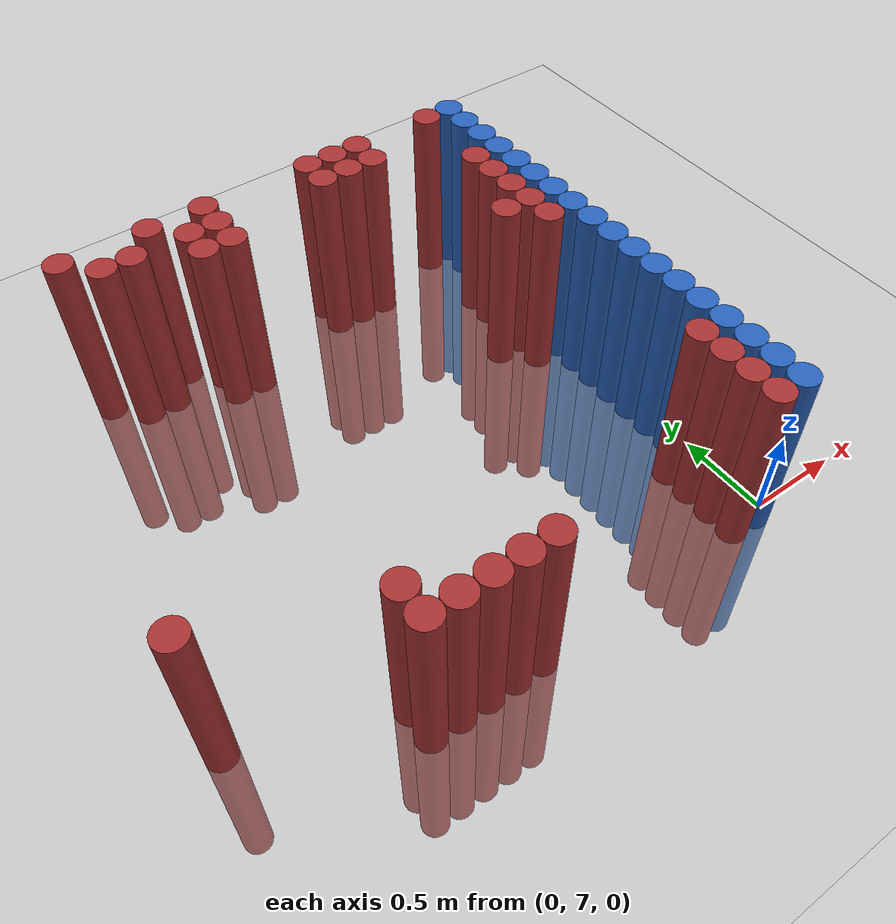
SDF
<sdf version="1.6">
 <world name="default">
  <model name="ground_plane">
   <static>1</static>
   <link name="link">
    <collision name="collision">
     <geometry><plane><normal>0 0 1</normal><size>100 100</size></plane></geometry>
     <surface><friction><ode><mu>100</mu><mu2>50</mu2></ode></friction></surface>
    </collision>
    <visual name="visual">
     <cast_shadows>0</cast_shadows>
     <geometry><plane><normal>0 0 1</normal><size>100 100</size></plane></geometry>
     <material>
      <script><uri>file://media/materials/scripts/gazebo.material</uri><name>Gazebo/Grey</name></script>
     </material>
    </visual>
   </link>
  </model>
  <model name="unit_cylinder_152">
   <static>1</static>
   <pose>-2.775000 7.425000 0.000000 0.000000 0.000000 0.000000</pose>
   <link name="link">
    <inertial>
     <mass>1</mass>
     <inertia><ixx>0.145833</ixx><ixy>0</ixy><ixz>0</ixz><iyy>0.145833</iyy><iyz>0</iyz><izz>0.125</izz></inertia>
    </inertial>
    <collision name="collision">
     <geometry><cylinder><radius>0.075000</radius><length>2</length></cylinder></geometry>
    </collision>
    <visual name="visual">
     <geometry><cylinder><radius>0.075000</radius><length>2</length></cylinder></geometry>
     <material>
      <ambient>0.648000 0.192000 0.192000 1</ambient>
      <diffuse>0.648000 0.192000 0.192000 1</diffuse>
     </material>
     <material>
      <script><name>Gazebo/Grey</name><uri>file://media/materials/scripts/gazebo.material</uri></script>
     </material>
    </visual>
   </link>
  </model>
  <model name="unit_cylinder_154">
   <static>1</static>
   <pose>-2.325000 9.525000 0.000000 0.000000 0.000000 0.000000</pose>
   <link name="link">
    <inertial>
     <mass>1</mass>
     <inertia><ixx>0.145833</ixx><ixy>0</ixy><ixz>0</ixz><iyy>0.145833</iyy><iyz>0</iyz><izz>0.125</izz></inertia>
    </inertial>
    <collision name="collision">
     <geometry><cylinder><radius>0.075000</radius><length>2</length></cylinder></geometry>
    </collision>
    <visual name="visual">
     <geometry><cylinder><radius>0.075000</radius><length>2</length></cylinder></geometry>
     <material>
      <ambient>0.648000 0.192000 0.192000 1</ambient>
      <diffuse>0.648000 0.192000 0.192000 1</diffuse>
     </material>
     <material>
      <script><name>Gazebo/Grey</name><uri>file://media/materials/scripts/gazebo.material</uri></script>
     </material>
    </visual>
   </link>
  </model>
  <model name="unit_cylinder_155">
   <static>1</static>
   <pose>-2.175000 9.375000 0.000000 0.000000 0.000000 0.000000</pose>
   <link name="link">
    <inertial>
     <mass>1</mass>
     <inertia><ixx>0.145833</ixx><ixy>0</ixy><ixz>0</ixz><iyy>0.145833</iyy><iyz>0</iyz><izz>0.125</izz></inertia>
    </inertial>
    <collision name="collision">
     <geometry><cylinder><radius>0.075000</radius><length>2</length></cylinder></geometry>
    </collision>
    <visual name="visual">
     <geometry><cylinder><radius>0.075000</radius><length>2</length></cylinder></geometry>
     <material>
      <ambient>0.648000 0.192000 0.192000 1</ambient>
      <diffuse>0.648000 0.192000 0.192000 1</diffuse>
     </material>
     <material>
      <script><name>Gazebo/Grey</name><uri>file://media/materials/scripts/gazebo.material</uri></script>
     </material>
    </visual>
   </link>
  </model>
  <model name="unit_cylinder_157">
   <static>1</static>
   <pose>-2.025000 6.975000 0.000000 0.000000 0.000000 0.000000</pose>
   <link name="link">
    <inertial>
     <mass>1</mass>
     <inertia><ixx>0.145833</ixx><ixy>0</ixy><ixz>0</ixz><iyy>0.145833</iyy><iyz>0</iyz><izz>0.125</izz></inertia>
    </inertial>
    <collision name="collision">
     <geometry><cylinder><radius>0.075000</radius><length>2</length></cylinder></geometry>
    </collision>
    <visual name="visual">
     <geometry><cylinder><radius>0.075000</radius><length>2</length></cylinder></geometry>
     <material>
      <ambient>0.648000 0.192000 0.192000 1</ambient>
      <diffuse>0.648000 0.192000 0.192000 1</diffuse>
     </material>
     <material>
      <script><name>Gazebo/Grey</name><uri>file://media/materials/scripts/gazebo.material</uri></script>
     </material>
    </visual>
   </link>
  </model>
  <model name="unit_cylinder_158">
   <static>1</static>
   <pose>-2.025000 7.125000 0.000000 0.000000 0.000000 0.000000</pose>
   <link name="link">
    <inertial>
     <mass>1</mass>
     <inertia><ixx>0.145833</ixx><ixy>0</ixy><ixz>0</ixz><iyy>0.145833</iyy><iyz>0</iyz><izz>0.125</izz></inertia>
    </inertial>
    <collision name="collision">
     <geometry><cylinder><radius>0.075000</radius><length>2</length></cylinder></geometry>
    </collision>
    <visual name="visual">
     <geometry><cylinder><radius>0.075000</radius><length>2</length></cylinder></geometry>
     <material>
      <ambient>0.648000 0.192000 0.192000 1</ambient>
      <diffuse>0.648000 0.192000 0.192000 1</diffuse>
     </material>
     <material>
      <script><name>Gazebo/Grey</name><uri>file://media/materials/scripts/gazebo.material</uri></script>
     </material>
    </visual>
   </link>
  </model>
  <model name="unit_cylinder_159">
   <static>1</static>
   <pose>-2.025000 9.375000 0.000000 0.000000 0.000000 0.000000</pose>
   <link name="link">
    <inertial>
     <mass>1</mass>
     <inertia><ixx>0.145833</ixx><ixy>0</ixy><ixz>0</ixz><iyy>0.145833</iyy><iyz>0</iyz><izz>0.125</izz></inertia>
    </inertial>
    <collision name="collision">
     <geometry><cylinder><radius>0.075000</radius><length>2</length></cylinder></geometry>
    </collision>
    <visual name="visual">
     <geometry><cylinder><radius>0.075000</radius><length>2</length></cylinder></geometry>
     <material>
      <ambient>0.648000 0.192000 0.192000 1</ambient>
      <diffuse>0.648000 0.192000 0.192000 1</diffuse>
     </material>
     <material>
      <script><name>Gazebo/Grey</name><uri>file://media/materials/scripts/gazebo.material</uri></script>
     </material>
    </visual>
   </link>
  </model>
  <model name="unit_cylinder_162">
   <static>1</static>
   <pose>-1.875000 6.975000 0.000000 0.000000 0.000000 0.000000</pose>
   <link name="link">
    <inertial>
     <mass>1</mass>
     <inertia><ixx>0.145833</ixx><ixy>0</ixy><ixz>0</ixz><iyy>0.145833</iyy><iyz>0</iyz><izz>0.125</izz></inertia>
    </inertial>
    <collision name="collision">
     <geometry><cylinder><radius>0.075000</radius><length>2</length></cylinder></geometry>
    </collision>
    <visual name="visual">
     <geometry><cylinder><radius>0.075000</radius><length>2</length></cylinder></geometry>
     <material>
      <ambient>0.648000 0.192000 0.192000 1</ambient>
      <diffuse>0.648000 0.192000 0.192000 1</diffuse>
     </material>
     <material>
      <script><name>Gazebo/Grey</name><uri>file://media/materials/scripts/gazebo.material</uri></script>
     </material>
    </visual>
   </link>
  </model>
  <model name="unit_cylinder_163">
   <static>1</static>
   <pose>-1.875000 9.525000 0.000000 0.000000 0.000000 0.000000</pose>
   <link name="link">
    <inertial>
     <mass>1</mass>
     <inertia><ixx>0.145833</ixx><ixy>0</ixy><ixz>0</ixz><iyy>0.145833</iyy><iyz>0</iyz><izz>0.125</izz></inertia>
    </inertial>
    <collision name="collision">
     <geometry><cylinder><radius>0.075000</radius><length>2</length></cylinder></geometry>
    </collision>
    <visual name="visual">
     <geometry><cylinder><radius>0.075000</radius><length>2</length></cylinder></geometry>
     <material>
      <ambient>0.648000 0.192000 0.192000 1</ambient>
      <diffuse>0.648000 0.192000 0.192000 1</diffuse>
     </material>
     <material>
      <script><name>Gazebo/Grey</name><uri>file://media/materials/scripts/gazebo.material</uri></script>
     </material>
    </visual>
   </link>
  </model>
  <model name="unit_cylinder_166">
   <static>1</static>
   <pose>-1.725000 6.975000 0.000000 0.000000 0.000000 0.000000</pose>
   <link name="link">
    <inertial>
     <mass>1</mass>
     <inertia><ixx>0.145833</ixx><ixy>0</ixy><ixz>0</ixz><iyy>0.145833</iyy><iyz>0</iyz><izz>0.125</izz></inertia>
    </inertial>
    <collision name="collision">
     <geometry><cylinder><radius>0.075000</radius><length>2</length></cylinder></geometry>
    </collision>
    <visual name="visual">
     <geometry><cylinder><radius>0.075000</radius><length>2</length></cylinder></geometry>
     <material>
      <ambient>0.648000 0.192000 0.192000 1</ambient>
      <diffuse>0.648000 0.192000 0.192000 1</diffuse>
     </material>
     <material>
      <script><name>Gazebo/Grey</name><uri>file://media/materials/scripts/gazebo.material</uri></script>
     </material>
    </visual>
   </link>
  </model>
  <model name="unit_cylinder_167">
   <static>1</static>
   <pose>-1.725000 9.225000 0.000000 0.000000 0.000000 0.000000</pose>
   <link name="link">
    <inertial>
     <mass>1</mass>
     <inertia><ixx>0.145833</ixx><ixy>0</ixy><ixz>0</ixz><iyy>0.145833</iyy><iyz>0</iyz><izz>0.125</izz></inertia>
    </inertial>
    <collision name="collision">
     <geometry><cylinder><radius>0.075000</radius><length>2</length></cylinder></geometry>
    </collision>
    <visual name="visual">
     <geometry><cylinder><radius>0.075000</radius><length>2</length></cylinder></geometry>
     <material>
      <ambient>0.648000 0.192000 0.192000 1</ambient>
      <diffuse>0.648000 0.192000 0.192000 1</diffuse>
     </material>
     <material>
      <script><name>Gazebo/Grey</name><uri>file://media/materials/scripts/gazebo.material</uri></script>
     </material>
    </visual>
   </link>
  </model>
  <model name="unit_cylinder_168">
   <static>1</static>
   <pose>-1.725000 9.375000 0.000000 0.000000 0.000000 0.000000</pose>
   <link name="link">
    <inertial>
     <mass>1</mass>
     <inertia><ixx>0.145833</ixx><ixy>0</ixy><ixz>0</ixz><iyy>0.145833</iyy><iyz>0</iyz><izz>0.125</izz></inertia>
    </inertial>
    <collision name="collision">
     <geometry><cylinder><radius>0.075000</radius><length>2</length></cylinder></geometry>
    </collision>
    <visual name="visual">
     <geometry><cylinder><radius>0.075000</radius><length>2</length></cylinder></geometry>
     <material>
      <ambient>0.648000 0.192000 0.192000 1</ambient>
      <diffuse>0.648000 0.192000 0.192000 1</diffuse>
     </material>
     <material>
      <script><name>Gazebo/Grey</name><uri>file://media/materials/scripts/gazebo.material</uri></script>
     </material>
    </visual>
   </link>
  </model>
  <model name="unit_cylinder_173">
   <static>1</static>
   <pose>-1.575000 6.975000 0.000000 0.000000 0.000000 0.000000</pose>
   <link name="link">
    <inertial>
     <mass>1</mass>
     <inertia><ixx>0.145833</ixx><ixy>0</ixy><ixz>0</ixz><iyy>0.145833</iyy><iyz>0</iyz><izz>0.125</izz></inertia>
    </inertial>
    <collision name="collision">
     <geometry><cylinder><radius>0.075000</radius><length>2</length></cylinder></geometry>
    </collision>
    <visual name="visual">
     <geometry><cylinder><radius>0.075000</radius><length>2</length></cylinder></geometry>
     <material>
      <ambient>0.648000 0.192000 0.192000 1</ambient>
      <diffuse>0.648000 0.192000 0.192000 1</diffuse>
     </material>
     <material>
      <script><name>Gazebo/Grey</name><uri>file://media/materials/scripts/gazebo.material</uri></script>
     </material>
    </visual>
   </link>
  </model>
  <model name="unit_cylinder_174">
   <static>1</static>
   <pose>-1.575000 9.225000 0.000000 0.000000 0.000000 0.000000</pose>
   <link name="link">
    <inertial>
     <mass>1</mass>
     <inertia><ixx>0.145833</ixx><ixy>0</ixy><ixz>0</ixz><iyy>0.145833</iyy><iyz>0</iyz><izz>0.125</izz></inertia>
    </inertial>
    <collision name="collision">
     <geometry><cylinder><radius>0.075000</radius><length>2</length></cylinder></geometry>
    </collision>
    <visual name="visual">
     <geometry><cylinder><radius>0.075000</radius><length>2</length></cylinder></geometry>
     <material>
      <ambient>0.648000 0.192000 0.192000 1</ambient>
      <diffuse>0.648000 0.192000 0.192000 1</diffuse>
     </material>
     <material>
      <script><name>Gazebo/Grey</name><uri>file://media/materials/scripts/gazebo.material</uri></script>
     </material>
    </visual>
   </link>
  </model>
  <model name="unit_cylinder_175">
   <static>1</static>
   <pose>-1.575000 9.375000 0.000000 0.000000 0.000000 0.000000</pose>
   <link name="link">
    <inertial>
     <mass>1</mass>
     <inertia><ixx>0.145833</ixx><ixy>0</ixy><ixz>0</ixz><iyy>0.145833</iyy><iyz>0</iyz><izz>0.125</izz></inertia>
    </inertial>
    <collision name="collision">
     <geometry><cylinder><radius>0.075000</radius><length>2</length></cylinder></geometry>
    </collision>
    <visual name="visual">
     <geometry><cylinder><radius>0.075000</radius><length>2</length></cylinder></geometry>
     <material>
      <ambient>0.648000 0.192000 0.192000 1</ambient>
      <diffuse>0.648000 0.192000 0.192000 1</diffuse>
     </material>
     <material>
      <script><name>Gazebo/Grey</name><uri>file://media/materials/scripts/gazebo.material</uri></script>
     </material>
    </visual>
   </link>
  </model>
  <model name="unit_cylinder_176">
   <static>1</static>
   <pose>-1.575000 9.525000 0.000000 0.000000 0.000000 0.000000</pose>
   <link name="link">
    <inertial>
     <mass>1</mass>
     <inertia><ixx>0.145833</ixx><ixy>0</ixy><ixz>0</ixz><iyy>0.145833</iyy><iyz>0</iyz><izz>0.125</izz></inertia>
    </inertial>
    <collision name="collision">
     <geometry><cylinder><radius>0.075000</radius><length>2</length></cylinder></geometry>
    </collision>
    <visual name="visual">
     <geometry><cylinder><radius>0.075000</radius><length>2</length></cylinder></geometry>
     <material>
      <ambient>0.648000 0.192000 0.192000 1</ambient>
      <diffuse>0.648000 0.192000 0.192000 1</diffuse>
     </material>
     <material>
      <script><name>Gazebo/Grey</name><uri>file://media/materials/scripts/gazebo.material</uri></script>
     </material>
    </visual>
   </link>
  </model>
  <model name="unit_cylinder_180">
   <static>1</static>
   <pose>-1.425000 6.975000 0.000000 0.000000 0.000000 0.000000</pose>
   <link name="link">
    <inertial>
     <mass>1</mass>
     <inertia><ixx>0.145833</ixx><ixy>0</ixy><ixz>0</ixz><iyy>0.145833</iyy><iyz>0</iyz><izz>0.125</izz></inertia>
    </inertial>
    <collision name="collision">
     <geometry><cylinder><radius>0.075000</radius><length>2</length></cylinder></geometry>
    </collision>
    <visual name="visual">
     <geometry><cylinder><radius>0.075000</radius><length>2</length></cylinder></geometry>
     <material>
      <ambient>0.648000 0.192000 0.192000 1</ambient>
      <diffuse>0.648000 0.192000 0.192000 1</diffuse>
     </material>
     <material>
      <script><name>Gazebo/Grey</name><uri>file://media/materials/scripts/gazebo.material</uri></script>
     </material>
    </visual>
   </link>
  </model>
  <model name="unit_cylinder_187">
   <static>1</static>
   <pose>-0.975000 9.375000 0.000000 0.000000 0.000000 0.000000</pose>
   <link name="link">
    <inertial>
     <mass>1</mass>
     <inertia><ixx>0.145833</ixx><ixy>0</ixy><ixz>0</ixz><iyy>0.145833</iyy><iyz>0</iyz><izz>0.125</izz></inertia>
    </inertial>
    <collision name="collision">
     <geometry><cylinder><radius>0.075000</radius><length>2</length></cylinder></geometry>
    </collision>
    <visual name="visual">
     <geometry><cylinder><radius>0.075000</radius><length>2</length></cylinder></geometry>
     <material>
      <ambient>0.648000 0.192000 0.192000 1</ambient>
      <diffuse>0.648000 0.192000 0.192000 1</diffuse>
     </material>
     <material>
      <script><name>Gazebo/Grey</name><uri>file://media/materials/scripts/gazebo.material</uri></script>
     </material>
    </visual>
   </link>
  </model>
  <model name="unit_cylinder_188">
   <static>1</static>
   <pose>-0.975000 9.525000 0.000000 0.000000 0.000000 0.000000</pose>
   <link name="link">
    <inertial>
     <mass>1</mass>
     <inertia><ixx>0.145833</ixx><ixy>0</ixy><ixz>0</ixz><iyy>0.145833</iyy><iyz>0</iyz><izz>0.125</izz></inertia>
    </inertial>
    <collision name="collision">
     <geometry><cylinder><radius>0.075000</radius><length>2</length></cylinder></geometry>
    </collision>
    <visual name="visual">
     <geometry><cylinder><radius>0.075000</radius><length>2</length></cylinder></geometry>
     <material>
      <ambient>0.648000 0.192000 0.192000 1</ambient>
      <diffuse>0.648000 0.192000 0.192000 1</diffuse>
     </material>
     <material>
      <script><name>Gazebo/Grey</name><uri>file://media/materials/scripts/gazebo.material</uri></script>
     </material>
    </visual>
   </link>
  </model>
  <model name="unit_cylinder_191">
   <static>1</static>
   <pose>-0.825000 9.375000 0.000000 0.000000 0.000000 0.000000</pose>
   <link name="link">
    <inertial>
     <mass>1</mass>
     <inertia><ixx>0.145833</ixx><ixy>0</ixy><ixz>0</ixz><iyy>0.145833</iyy><iyz>0</iyz><izz>0.125</izz></inertia>
    </inertial>
    <collision name="collision">
     <geometry><cylinder><radius>0.075000</radius><length>2</length></cylinder></geometry>
    </collision>
    <visual name="visual">
     <geometry><cylinder><radius>0.075000</radius><length>2</length></cylinder></geometry>
     <material>
      <ambient>0.648000 0.192000 0.192000 1</ambient>
      <diffuse>0.648000 0.192000 0.192000 1</diffuse>
     </material>
     <material>
      <script><name>Gazebo/Grey</name><uri>file://media/materials/scripts/gazebo.material</uri></script>
     </material>
    </visual>
   </link>
  </model>
  <model name="unit_cylinder_192">
   <static>1</static>
   <pose>-0.825000 9.525000 0.000000 0.000000 0.000000 0.000000</pose>
   <link name="link">
    <inertial>
     <mass>1</mass>
     <inertia><ixx>0.145833</ixx><ixy>0</ixy><ixz>0</ixz><iyy>0.145833</iyy><iyz>0</iyz><izz>0.125</izz></inertia>
    </inertial>
    <collision name="collision">
     <geometry><cylinder><radius>0.075000</radius><length>2</length></cylinder></geometry>
    </collision>
    <visual name="visual">
     <geometry><cylinder><radius>0.075000</radius><length>2</length></cylinder></geometry>
     <material>
      <ambient>0.648000 0.192000 0.192000 1</ambient>
      <diffuse>0.648000 0.192000 0.192000 1</diffuse>
     </material>
     <material>
      <script><name>Gazebo/Grey</name><uri>file://media/materials/scripts/gazebo.material</uri></script>
     </material>
    </visual>
   </link>
  </model>
  <model name="unit_cylinder_194">
   <static>1</static>
   <pose>-0.675000 9.375000 0.000000 0.000000 0.000000 0.000000</pose>
   <link name="link">
    <inertial>
     <mass>1</mass>
     <inertia><ixx>0.145833</ixx><ixy>0</ixy><ixz>0</ixz><iyy>0.145833</iyy><iyz>0</iyz><izz>0.125</izz></inertia>
    </inertial>
    <collision name="collision">
     <geometry><cylinder><radius>0.075000</radius><length>2</length></cylinder></geometry>
    </collision>
    <visual name="visual">
     <geometry><cylinder><radius>0.075000</radius><length>2</length></cylinder></geometry>
     <material>
      <ambient>0.648000 0.192000 0.192000 1</ambient>
      <diffuse>0.648000 0.192000 0.192000 1</diffuse>
     </material>
     <material>
      <script><name>Gazebo/Grey</name><uri>file://media/materials/scripts/gazebo.material</uri></script>
     </material>
    </visual>
   </link>
  </model>
  <model name="unit_cylinder_195">
   <static>1</static>
   <pose>-0.675000 9.525000 0.000000 0.000000 0.000000 0.000000</pose>
   <link name="link">
    <inertial>
     <mass>1</mass>
     <inertia><ixx>0.145833</ixx><ixy>0</ixy><ixz>0</ixz><iyy>0.145833</iyy><iyz>0</iyz><izz>0.125</izz></inertia>
    </inertial>
    <collision name="collision">
     <geometry><cylinder><radius>0.075000</radius><length>2</length></cylinder></geometry>
    </collision>
    <visual name="visual">
     <geometry><cylinder><radius>0.075000</radius><length>2</length></cylinder></geometry>
     <material>
      <ambient>0.648000 0.192000 0.192000 1</ambient>
      <diffuse>0.648000 0.192000 0.192000 1</diffuse>
     </material>
     <material>
      <script><name>Gazebo/Grey</name><uri>file://media/materials/scripts/gazebo.material</uri></script>
     </material>
    </visual>
   </link>
  </model>
  <model name="unit_cylinder_204">
   <static>1</static>
   <pose>-0.375000 8.625000 0.000000 0.000000 0.000000 0.000000</pose>
   <link name="link">
    <inertial>
     <mass>1</mass>
     <inertia><ixx>0.145833</ixx><ixy>0</ixy><ixz>0</ixz><iyy>0.145833</iyy><iyz>0</iyz><izz>0.125</izz></inertia>
    </inertial>
    <collision name="collision">
     <geometry><cylinder><radius>0.075000</radius><length>2</length></cylinder></geometry>
    </collision>
    <visual name="visual">
     <geometry><cylinder><radius>0.075000</radius><length>2</length></cylinder></geometry>
     <material>
      <ambient>0.648000 0.192000 0.192000 1</ambient>
      <diffuse>0.648000 0.192000 0.192000 1</diffuse>
     </material>
     <material>
      <script><name>Gazebo/Grey</name><uri>file://media/materials/scripts/gazebo.material</uri></script>
     </material>
    </visual>
   </link>
  </model>
  <model name="unit_cylinder_216">
   <static>1</static>
   <pose>-0.225000 6.975000 0.000000 0.000000 0.000000 0.000000</pose>
   <link name="link">
    <inertial>
     <mass>1</mass>
     <inertia><ixx>0.145833</ixx><ixy>0</ixy><ixz>0</ixz><iyy>0.145833</iyy><iyz>0</iyz><izz>0.125</izz></inertia>
    </inertial>
    <collision name="collision">
     <geometry><cylinder><radius>0.075000</radius><length>2</length></cylinder></geometry>
    </collision>
    <visual name="visual">
     <geometry><cylinder><radius>0.075000</radius><length>2</length></cylinder></geometry>
     <material>
      <ambient>0.648000 0.192000 0.192000 1</ambient>
      <diffuse>0.648000 0.192000 0.192000 1</diffuse>
     </material>
     <material>
      <script><name>Gazebo/Grey</name><uri>file://media/materials/scripts/gazebo.material</uri></script>
     </material>
    </visual>
   </link>
  </model>
  <model name="unit_cylinder_217">
   <static>1</static>
   <pose>-0.225000 7.125000 0.000000 0.000000 0.000000 0.000000</pose>
   <link name="link">
    <inertial>
     <mass>1</mass>
     <inertia><ixx>0.145833</ixx><ixy>0</ixy><ixz>0</ixz><iyy>0.145833</iyy><iyz>0</iyz><izz>0.125</izz></inertia>
    </inertial>
    <collision name="collision">
     <geometry><cylinder><radius>0.075000</radius><length>2</length></cylinder></geometry>
    </collision>
    <visual name="visual">
     <geometry><cylinder><radius>0.075000</radius><length>2</length></cylinder></geometry>
     <material>
      <ambient>0.648000 0.192000 0.192000 1</ambient>
      <diffuse>0.648000 0.192000 0.192000 1</diffuse>
     </material>
     <material>
      <script><name>Gazebo/Grey</name><uri>file://media/materials/scripts/gazebo.material</uri></script>
     </material>
    </visual>
   </link>
  </model>
  <model name="unit_cylinder_218">
   <static>1</static>
   <pose>-0.225000 7.275000 0.000000 0.000000 0.000000 0.000000</pose>
   <link name="link">
    <inertial>
     <mass>1</mass>
     <inertia><ixx>0.145833</ixx><ixy>0</ixy><ixz>0</ixz><iyy>0.145833</iyy><iyz>0</iyz><izz>0.125</izz></inertia>
    </inertial>
    <collision name="collision">
     <geometry><cylinder><radius>0.075000</radius><length>2</length></cylinder></geometry>
    </collision>
    <visual name="visual">
     <geometry><cylinder><radius>0.075000</radius><length>2</length></cylinder></geometry>
     <material>
      <ambient>0.648000 0.192000 0.192000 1</ambient>
      <diffuse>0.648000 0.192000 0.192000 1</diffuse>
     </material>
     <material>
      <script><name>Gazebo/Grey</name><uri>file://media/materials/scripts/gazebo.material</uri></script>
     </material>
    </visual>
   </link>
  </model>
  <model name="unit_cylinder_219">
   <static>1</static>
   <pose>-0.225000 7.425000 0.000000 0.000000 0.000000 0.000000</pose>
   <link name="link">
    <inertial>
     <mass>1</mass>
     <inertia><ixx>0.145833</ixx><ixy>0</ixy><ixz>0</ixz><iyy>0.145833</iyy><iyz>0</iyz><izz>0.125</izz></inertia>
    </inertial>
    <collision name="collision">
     <geometry><cylinder><radius>0.075000</radius><length>2</length></cylinder></geometry>
    </collision>
    <visual name="visual">
     <geometry><cylinder><radius>0.075000</radius><length>2</length></cylinder></geometry>
     <material>
      <ambient>0.648000 0.192000 0.192000 1</ambient>
      <diffuse>0.648000 0.192000 0.192000 1</diffuse>
     </material>
     <material>
      <script><name>Gazebo/Grey</name><uri>file://media/materials/scripts/gazebo.material</uri></script>
     </material>
    </visual>
   </link>
  </model>
  <model name="unit_cylinder_220">
   <static>1</static>
   <pose>-0.225000 8.475000 0.000000 0.000000 0.000000 0.000000</pose>
   <link name="link">
    <inertial>
     <mass>1</mass>
     <inertia><ixx>0.145833</ixx><ixy>0</ixy><ixz>0</ixz><iyy>0.145833</iyy><iyz>0</iyz><izz>0.125</izz></inertia>
    </inertial>
    <collision name="collision">
     <geometry><cylinder><radius>0.075000</radius><length>2</length></cylinder></geometry>
    </collision>
    <visual name="visual">
     <geometry><cylinder><radius>0.075000</radius><length>2</length></cylinder></geometry>
     <material>
      <ambient>0.648000 0.192000 0.192000 1</ambient>
      <diffuse>0.648000 0.192000 0.192000 1</diffuse>
     </material>
     <material>
      <script><name>Gazebo/Grey</name><uri>file://media/materials/scripts/gazebo.material</uri></script>
     </material>
    </visual>
   </link>
  </model>
  <model name="unit_cylinder_221">
   <static>1</static>
   <pose>-0.225000 8.625000 0.000000 0.000000 0.000000 0.000000</pose>
   <link name="link">
    <inertial>
     <mass>1</mass>
     <inertia><ixx>0.145833</ixx><ixy>0</ixy><ixz>0</ixz><iyy>0.145833</iyy><iyz>0</iyz><izz>0.125</izz></inertia>
    </inertial>
    <collision name="collision">
     <geometry><cylinder><radius>0.075000</radius><length>2</length></cylinder></geometry>
    </collision>
    <visual name="visual">
     <geometry><cylinder><radius>0.075000</radius><length>2</length></cylinder></geometry>
     <material>
      <ambient>0.648000 0.192000 0.192000 1</ambient>
      <diffuse>0.648000 0.192000 0.192000 1</diffuse>
     </material>
     <material>
      <script><name>Gazebo/Grey</name><uri>file://media/materials/scripts/gazebo.material</uri></script>
     </material>
    </visual>
   </link>
  </model>
  <model name="unit_cylinder_222">
   <static>1</static>
   <pose>-0.225000 8.775000 0.000000 0.000000 0.000000 0.000000</pose>
   <link name="link">
    <inertial>
     <mass>1</mass>
     <inertia><ixx>0.145833</ixx><ixy>0</ixy><ixz>0</ixz><iyy>0.145833</iyy><iyz>0</iyz><izz>0.125</izz></inertia>
    </inertial>
    <collision name="collision">
     <geometry><cylinder><radius>0.075000</radius><length>2</length></cylinder></geometry>
    </collision>
    <visual name="visual">
     <geometry><cylinder><radius>0.075000</radius><length>2</length></cylinder></geometry>
     <material>
      <ambient>0.648000 0.192000 0.192000 1</ambient>
      <diffuse>0.648000 0.192000 0.192000 1</diffuse>
     </material>
     <material>
      <script><name>Gazebo/Grey</name><uri>file://media/materials/scripts/gazebo.material</uri></script>
     </material>
    </visual>
   </link>
  </model>
  <model name="unit_cylinder_223">
   <static>1</static>
   <pose>-0.225000 8.925000 0.000000 0.000000 0.000000 0.000000</pose>
   <link name="link">
    <inertial>
     <mass>1</mass>
     <inertia><ixx>0.145833</ixx><ixy>0</ixy><ixz>0</ixz><iyy>0.145833</iyy><iyz>0</iyz><izz>0.125</izz></inertia>
    </inertial>
    <collision name="collision">
     <geometry><cylinder><radius>0.075000</radius><length>2</length></cylinder></geometry>
    </collision>
    <visual name="visual">
     <geometry><cylinder><radius>0.075000</radius><length>2</length></cylinder></geometry>
     <material>
      <ambient>0.648000 0.192000 0.192000 1</ambient>
      <diffuse>0.648000 0.192000 0.192000 1</diffuse>
     </material>
     <material>
      <script><name>Gazebo/Grey</name><uri>file://media/materials/scripts/gazebo.material</uri></script>
     </material>
    </visual>
   </link>
  </model>
  <model name="unit_cylinder_224">
   <static>1</static>
   <pose>-0.225000 9.075000 0.000000 0.000000 0.000000 0.000000</pose>
   <link name="link">
    <inertial>
     <mass>1</mass>
     <inertia><ixx>0.145833</ixx><ixy>0</ixy><ixz>0</ixz><iyy>0.145833</iyy><iyz>0</iyz><izz>0.125</izz></inertia>
    </inertial>
    <collision name="collision">
     <geometry><cylinder><radius>0.075000</radius><length>2</length></cylinder></geometry>
    </collision>
    <visual name="visual">
     <geometry><cylinder><radius>0.075000</radius><length>2</length></cylinder></geometry>
     <material>
      <ambient>0.648000 0.192000 0.192000 1</ambient>
      <diffuse>0.648000 0.192000 0.192000 1</diffuse>
     </material>
     <material>
      <script><name>Gazebo/Grey</name><uri>file://media/materials/scripts/gazebo.material</uri></script>
     </material>
    </visual>
   </link>
  </model>
  <model name="unit_cylinder_225">
   <static>1</static>
   <pose>-0.225000 9.525000 0.000000 0.000000 0.000000 0.000000</pose>
   <link name="link">
    <inertial>
     <mass>1</mass>
     <inertia><ixx>0.145833</ixx><ixy>0</ixy><ixz>0</ixz><iyy>0.145833</iyy><iyz>0</iyz><izz>0.125</izz></inertia>
    </inertial>
    <collision name="collision">
     <geometry><cylinder><radius>0.075000</radius><length>2</length></cylinder></geometry>
    </collision>
    <visual name="visual">
     <geometry><cylinder><radius>0.075000</radius><length>2</length></cylinder></geometry>
     <material>
      <ambient>0.648000 0.192000 0.192000 1</ambient>
      <diffuse>0.648000 0.192000 0.192000 1</diffuse>
     </material>
     <material>
      <script><name>Gazebo/Grey</name><uri>file://media/materials/scripts/gazebo.material</uri></script>
     </material>
    </visual>
   </link>
  </model>
  <model name="unit_cylinder_238">
   <static>1</static>
   <pose>-0.075000 6.975000 0.000000 0.000000 0.000000 0.000000</pose>
   <link name="link">
    <inertial>
     <mass>1</mass>
     <inertia><ixx>0.145833</ixx><ixy>0</ixy><ixz>0</ixz><iyy>0.145833</iyy><iyz>0</iyz><izz>0.125</izz></inertia>
    </inertial>
    <collision name="collision">
     <geometry><cylinder><radius>0.075000</radius><length>2</length></cylinder></geometry>
    </collision>
    <visual name="visual">
     <geometry><cylinder><radius>0.075000</radius><length>2</length></cylinder></geometry>
     <material>
      <ambient>0.152000 0.379000 0.720000 1</ambient>
      <diffuse>0.152000 0.379000 0.720000 1</diffuse>
     </material>
     <material>
      <script><name>Gazebo/Grey</name><uri>file://media/materials/scripts/gazebo.material</uri></script>
     </material>
    </visual>
   </link>
  </model>
  <model name="unit_cylinder_239">
   <static>1</static>
   <pose>-0.075000 7.125000 0.000000 0.000000 0.000000 0.000000</pose>
   <link name="link">
    <inertial>
     <mass>1</mass>
     <inertia><ixx>0.145833</ixx><ixy>0</ixy><ixz>0</ixz><iyy>0.145833</iyy><iyz>0</iyz><izz>0.125</izz></inertia>
    </inertial>
    <collision name="collision">
     <geometry><cylinder><radius>0.075000</radius><length>2</length></cylinder></geometry>
    </collision>
    <visual name="visual">
     <geometry><cylinder><radius>0.075000</radius><length>2</length></cylinder></geometry>
     <material>
      <ambient>0.152000 0.379000 0.720000 1</ambient>
      <diffuse>0.152000 0.379000 0.720000 1</diffuse>
     </material>
     <material>
      <script><name>Gazebo/Grey</name><uri>file://media/materials/scripts/gazebo.material</uri></script>
     </material>
    </visual>
   </link>
  </model>
  <model name="unit_cylinder_240">
   <static>1</static>
   <pose>-0.075000 7.275000 0.000000 0.000000 0.000000 0.000000</pose>
   <link name="link">
    <inertial>
     <mass>1</mass>
     <inertia><ixx>0.145833</ixx><ixy>0</ixy><ixz>0</ixz><iyy>0.145833</iyy><iyz>0</iyz><izz>0.125</izz></inertia>
    </inertial>
    <collision name="collision">
     <geometry><cylinder><radius>0.075000</radius><length>2</length></cylinder></geometry>
    </collision>
    <visual name="visual">
     <geometry><cylinder><radius>0.075000</radius><length>2</length></cylinder></geometry>
     <material>
      <ambient>0.152000 0.379000 0.720000 1</ambient>
      <diffuse>0.152000 0.379000 0.720000 1</diffuse>
     </material>
     <material>
      <script><name>Gazebo/Grey</name><uri>file://media/materials/scripts/gazebo.material</uri></script>
     </material>
    </visual>
   </link>
  </model>
  <model name="unit_cylinder_241">
   <static>1</static>
   <pose>-0.075000 7.425000 0.000000 0.000000 0.000000 0.000000</pose>
   <link name="link">
    <inertial>
     <mass>1</mass>
     <inertia><ixx>0.145833</ixx><ixy>0</ixy><ixz>0</ixz><iyy>0.145833</iyy><iyz>0</iyz><izz>0.125</izz></inertia>
    </inertial>
    <collision name="collision">
     <geometry><cylinder><radius>0.075000</radius><length>2</length></cylinder></geometry>
    </collision>
    <visual name="visual">
     <geometry><cylinder><radius>0.075000</radius><length>2</length></cylinder></geometry>
     <material>
      <ambient>0.152000 0.379000 0.720000 1</ambient>
      <diffuse>0.152000 0.379000 0.720000 1</diffuse>
     </material>
     <material>
      <script><name>Gazebo/Grey</name><uri>file://media/materials/scripts/gazebo.material</uri></script>
     </material>
    </visual>
   </link>
  </model>
  <model name="unit_cylinder_242">
   <static>1</static>
   <pose>-0.075000 7.575000 0.000000 0.000000 0.000000 0.000000</pose>
   <link name="link">
    <inertial>
     <mass>1</mass>
     <inertia><ixx>0.145833</ixx><ixy>0</ixy><ixz>0</ixz><iyy>0.145833</iyy><iyz>0</iyz><izz>0.125</izz></inertia>
    </inertial>
    <collision name="collision">
     <geometry><cylinder><radius>0.075000</radius><length>2</length></cylinder></geometry>
    </collision>
    <visual name="visual">
     <geometry><cylinder><radius>0.075000</radius><length>2</length></cylinder></geometry>
     <material>
      <ambient>0.152000 0.379000 0.720000 1</ambient>
      <diffuse>0.152000 0.379000 0.720000 1</diffuse>
     </material>
     <material>
      <script><name>Gazebo/Grey</name><uri>file://media/materials/scripts/gazebo.material</uri></script>
     </material>
    </visual>
   </link>
  </model>
  <model name="unit_cylinder_243">
   <static>1</static>
   <pose>-0.075000 7.725000 0.000000 0.000000 0.000000 0.000000</pose>
   <link name="link">
    <inertial>
     <mass>1</mass>
     <inertia><ixx>0.145833</ixx><ixy>0</ixy><ixz>0</ixz><iyy>0.145833</iyy><iyz>0</iyz><izz>0.125</izz></inertia>
    </inertial>
    <collision name="collision">
     <geometry><cylinder><radius>0.075000</radius><length>2</length></cylinder></geometry>
    </collision>
    <visual name="visual">
     <geometry><cylinder><radius>0.075000</radius><length>2</length></cylinder></geometry>
     <material>
      <ambient>0.152000 0.379000 0.720000 1</ambient>
      <diffuse>0.152000 0.379000 0.720000 1</diffuse>
     </material>
     <material>
      <script><name>Gazebo/Grey</name><uri>file://media/materials/scripts/gazebo.material</uri></script>
     </material>
    </visual>
   </link>
  </model>
  <model name="unit_cylinder_244">
   <static>1</static>
   <pose>-0.075000 7.875000 0.000000 0.000000 0.000000 0.000000</pose>
   <link name="link">
    <inertial>
     <mass>1</mass>
     <inertia><ixx>0.145833</ixx><ixy>0</ixy><ixz>0</ixz><iyy>0.145833</iyy><iyz>0</iyz><izz>0.125</izz></inertia>
    </inertial>
    <collision name="collision">
     <geometry><cylinder><radius>0.075000</radius><length>2</length></cylinder></geometry>
    </collision>
    <visual name="visual">
     <geometry><cylinder><radius>0.075000</radius><length>2</length></cylinder></geometry>
     <material>
      <ambient>0.152000 0.379000 0.720000 1</ambient>
      <diffuse>0.152000 0.379000 0.720000 1</diffuse>
     </material>
     <material>
      <script><name>Gazebo/Grey</name><uri>file://media/materials/scripts/gazebo.material</uri></script>
     </material>
    </visual>
   </link>
  </model>
  <model name="unit_cylinder_245">
   <static>1</static>
   <pose>-0.075000 8.025000 0.000000 0.000000 0.000000 0.000000</pose>
   <link name="link">
    <inertial>
     <mass>1</mass>
     <inertia><ixx>0.145833</ixx><ixy>0</ixy><ixz>0</ixz><iyy>0.145833</iyy><iyz>0</iyz><izz>0.125</izz></inertia>
    </inertial>
    <collision name="collision">
     <geometry><cylinder><radius>0.075000</radius><length>2</length></cylinder></geometry>
    </collision>
    <visual name="visual">
     <geometry><cylinder><radius>0.075000</radius><length>2</length></cylinder></geometry>
     <material>
      <ambient>0.152000 0.379000 0.720000 1</ambient>
      <diffuse>0.152000 0.379000 0.720000 1</diffuse>
     </material>
     <material>
      <script><name>Gazebo/Grey</name><uri>file://media/materials/scripts/gazebo.material</uri></script>
     </material>
    </visual>
   </link>
  </model>
  <model name="unit_cylinder_246">
   <static>1</static>
   <pose>-0.075000 8.175000 0.000000 0.000000 0.000000 0.000000</pose>
   <link name="link">
    <inertial>
     <mass>1</mass>
     <inertia><ixx>0.145833</ixx><ixy>0</ixy><ixz>0</ixz><iyy>0.145833</iyy><iyz>0</iyz><izz>0.125</izz></inertia>
    </inertial>
    <collision name="collision">
     <geometry><cylinder><radius>0.075000</radius><length>2</length></cylinder></geometry>
    </collision>
    <visual name="visual">
     <geometry><cylinder><radius>0.075000</radius><length>2</length></cylinder></geometry>
     <material>
      <ambient>0.152000 0.379000 0.720000 1</ambient>
      <diffuse>0.152000 0.379000 0.720000 1</diffuse>
     </material>
     <material>
      <script><name>Gazebo/Grey</name><uri>file://media/materials/scripts/gazebo.material</uri></script>
     </material>
    </visual>
   </link>
  </model>
  <model name="unit_cylinder_247">
   <static>1</static>
   <pose>-0.075000 8.325000 0.000000 0.000000 0.000000 0.000000</pose>
   <link name="link">
    <inertial>
     <mass>1</mass>
     <inertia><ixx>0.145833</ixx><ixy>0</ixy><ixz>0</ixz><iyy>0.145833</iyy><iyz>0</iyz><izz>0.125</izz></inertia>
    </inertial>
    <collision name="collision">
     <geometry><cylinder><radius>0.075000</radius><length>2</length></cylinder></geometry>
    </collision>
    <visual name="visual">
     <geometry><cylinder><radius>0.075000</radius><length>2</length></cylinder></geometry>
     <material>
      <ambient>0.152000 0.379000 0.720000 1</ambient>
      <diffuse>0.152000 0.379000 0.720000 1</diffuse>
     </material>
     <material>
      <script><name>Gazebo/Grey</name><uri>file://media/materials/scripts/gazebo.material</uri></script>
     </material>
    </visual>
   </link>
  </model>
  <model name="unit_cylinder_248">
   <static>1</static>
   <pose>-0.075000 8.475000 0.000000 0.000000 0.000000 0.000000</pose>
   <link name="link">
    <inertial>
     <mass>1</mass>
     <inertia><ixx>0.145833</ixx><ixy>0</ixy><ixz>0</ixz><iyy>0.145833</iyy><iyz>0</iyz><izz>0.125</izz></inertia>
    </inertial>
    <collision name="collision">
     <geometry><cylinder><radius>0.075000</radius><length>2</length></cylinder></geometry>
    </collision>
    <visual name="visual">
     <geometry><cylinder><radius>0.075000</radius><length>2</length></cylinder></geometry>
     <material>
      <ambient>0.152000 0.379000 0.720000 1</ambient>
      <diffuse>0.152000 0.379000 0.720000 1</diffuse>
     </material>
     <material>
      <script><name>Gazebo/Grey</name><uri>file://media/materials/scripts/gazebo.material</uri></script>
     </material>
    </visual>
   </link>
  </model>
  <model name="unit_cylinder_249">
   <static>1</static>
   <pose>-0.075000 8.625000 0.000000 0.000000 0.000000 0.000000</pose>
   <link name="link">
    <inertial>
     <mass>1</mass>
     <inertia><ixx>0.145833</ixx><ixy>0</ixy><ixz>0</ixz><iyy>0.145833</iyy><iyz>0</iyz><izz>0.125</izz></inertia>
    </inertial>
    <collision name="collision">
     <geometry><cylinder><radius>0.075000</radius><length>2</length></cylinder></geometry>
    </collision>
    <visual name="visual">
     <geometry><cylinder><radius>0.075000</radius><length>2</length></cylinder></geometry>
     <material>
      <ambient>0.152000 0.379000 0.720000 1</ambient>
      <diffuse>0.152000 0.379000 0.720000 1</diffuse>
     </material>
     <material>
      <script><name>Gazebo/Grey</name><uri>file://media/materials/scripts/gazebo.material</uri></script>
     </material>
    </visual>
   </link>
  </model>
  <model name="unit_cylinder_250">
   <static>1</static>
   <pose>-0.075000 8.775000 0.000000 0.000000 0.000000 0.000000</pose>
   <link name="link">
    <inertial>
     <mass>1</mass>
     <inertia><ixx>0.145833</ixx><ixy>0</ixy><ixz>0</ixz><iyy>0.145833</iyy><iyz>0</iyz><izz>0.125</izz></inertia>
    </inertial>
    <collision name="collision">
     <geometry><cylinder><radius>0.075000</radius><length>2</length></cylinder></geometry>
    </collision>
    <visual name="visual">
     <geometry><cylinder><radius>0.075000</radius><length>2</length></cylinder></geometry>
     <material>
      <ambient>0.152000 0.379000 0.720000 1</ambient>
      <diffuse>0.152000 0.379000 0.720000 1</diffuse>
     </material>
     <material>
      <script><name>Gazebo/Grey</name><uri>file://media/materials/scripts/gazebo.material</uri></script>
     </material>
    </visual>
   </link>
  </model>
  <model name="unit_cylinder_251">
   <static>1</static>
   <pose>-0.075000 8.925000 0.000000 0.000000 0.000000 0.000000</pose>
   <link name="link">
    <inertial>
     <mass>1</mass>
     <inertia><ixx>0.145833</ixx><ixy>0</ixy><ixz>0</ixz><iyy>0.145833</iyy><iyz>0</iyz><izz>0.125</izz></inertia>
    </inertial>
    <collision name="collision">
     <geometry><cylinder><radius>0.075000</radius><length>2</length></cylinder></geometry>
    </collision>
    <visual name="visual">
     <geometry><cylinder><radius>0.075000</radius><length>2</length></cylinder></geometry>
     <material>
      <ambient>0.152000 0.379000 0.720000 1</ambient>
      <diffuse>0.152000 0.379000 0.720000 1</diffuse>
     </material>
     <material>
      <script><name>Gazebo/Grey</name><uri>file://media/materials/scripts/gazebo.material</uri></script>
     </material>
    </visual>
   </link>
  </model>
  <model name="unit_cylinder_252">
   <static>1</static>
   <pose>-0.075000 9.075000 0.000000 0.000000 0.000000 0.000000</pose>
   <link name="link">
    <inertial>
     <mass>1</mass>
     <inertia><ixx>0.145833</ixx><ixy>0</ixy><ixz>0</ixz><iyy>0.145833</iyy><iyz>0</iyz><izz>0.125</izz></inertia>
    </inertial>
    <collision name="collision">
     <geometry><cylinder><radius>0.075000</radius><length>2</length></cylinder></geometry>
    </collision>
    <visual name="visual">
     <geometry><cylinder><radius>0.075000</radius><length>2</length></cylinder></geometry>
     <material>
      <ambient>0.152000 0.379000 0.720000 1</ambient>
      <diffuse>0.152000 0.379000 0.720000 1</diffuse>
     </material>
     <material>
      <script><name>Gazebo/Grey</name><uri>file://media/materials/scripts/gazebo.material</uri></script>
     </material>
    </visual>
   </link>
  </model>
  <model name="unit_cylinder_253">
   <static>1</static>
   <pose>-0.075000 9.225000 0.000000 0.000000 0.000000 0.000000</pose>
   <link name="link">
    <inertial>
     <mass>1</mass>
     <inertia><ixx>0.145833</ixx><ixy>0</ixy><ixz>0</ixz><iyy>0.145833</iyy><iyz>0</iyz><izz>0.125</izz></inertia>
    </inertial>
    <collision name="collision">
     <geometry><cylinder><radius>0.075000</radius><length>2</length></cylinder></geometry>
    </collision>
    <visual name="visual">
     <geometry><cylinder><radius>0.075000</radius><length>2</length></cylinder></geometry>
     <material>
      <ambient>0.152000 0.379000 0.720000 1</ambient>
      <diffuse>0.152000 0.379000 0.720000 1</diffuse>
     </material>
     <material>
      <script><name>Gazebo/Grey</name><uri>file://media/materials/scripts/gazebo.material</uri></script>
     </material>
    </visual>
   </link>
  </model>
  <model name="unit_cylinder_254">
   <static>1</static>
   <pose>-0.075000 9.375000 0.000000 0.000000 0.000000 0.000000</pose>
   <link name="link">
    <inertial>
     <mass>1</mass>
     <inertia><ixx>0.145833</ixx><ixy>0</ixy><ixz>0</ixz><iyy>0.145833</iyy><iyz>0</iyz><izz>0.125</izz></inertia>
    </inertial>
    <collision name="collision">
     <geometry><cylinder><radius>0.075000</radius><length>2</length></cylinder></geometry>
    </collision>
    <visual name="visual">
     <geometry><cylinder><radius>0.075000</radius><length>2</length></cylinder></geometry>
     <material>
      <ambient>0.152000 0.379000 0.720000 1</ambient>
      <diffuse>0.152000 0.379000 0.720000 1</diffuse>
     </material>
     <material>
      <script><name>Gazebo/Grey</name><uri>file://media/materials/scripts/gazebo.material</uri></script>
     </material>
    </visual>
   </link>
  </model>
  <model name="unit_cylinder_255">
   <static>1</static>
   <pose>-0.075000 9.525000 0.000000 0.000000 0.000000 0.000000</pose>
   <link name="link">
    <inertial>
     <mass>1</mass>
     <inertia><ixx>0.145833</ixx><ixy>0</ixy><ixz>0</ixz><iyy>0.145833</iyy><iyz>0</iyz><izz>0.125</izz></inertia>
    </inertial>
    <collision name="collision">
     <geometry><cylinder><radius>0.075000</radius><length>2</length></cylinder></geometry>
    </collision>
    <visual name="visual">
     <geometry><cylinder><radius>0.075000</radius><length>2</length></cylinder></geometry>
     <material>
      <ambient>0.152000 0.379000 0.720000 1</ambient>
      <diffuse>0.152000 0.379000 0.720000 1</diffuse>
     </material>
     <material>
      <script><name>Gazebo/Grey</name><uri>file://media/materials/scripts/gazebo.material</uri></script>
     </material>
    </visual>
   </link>
  </model>
 </world>
</sdf>
